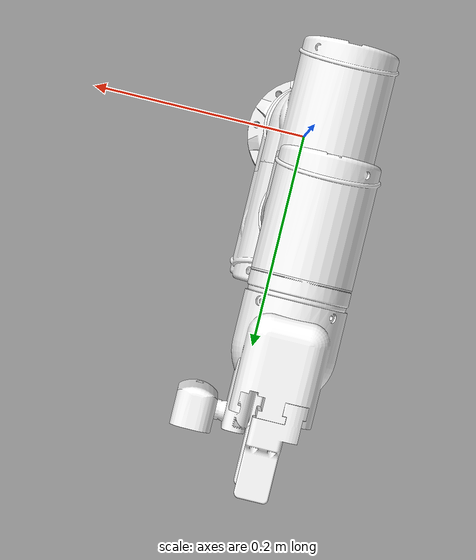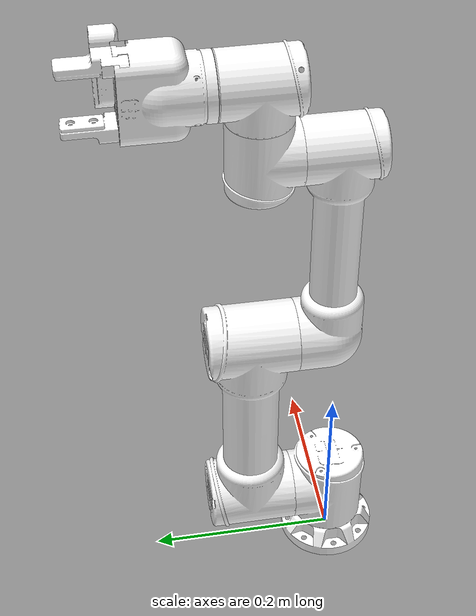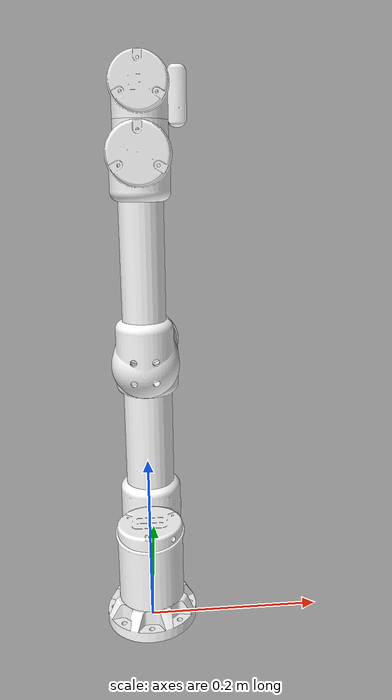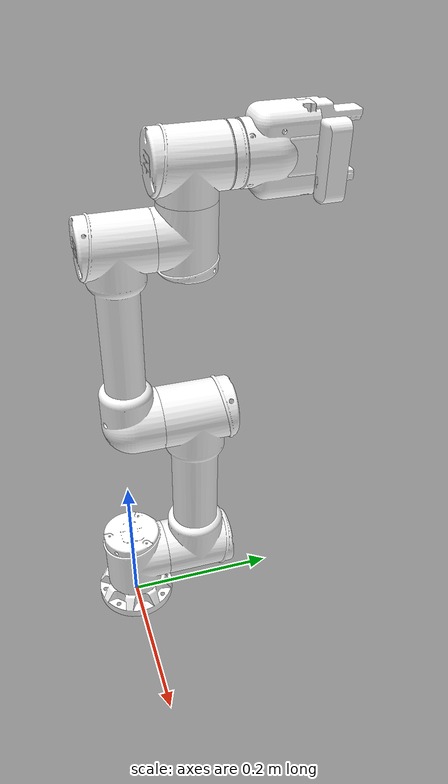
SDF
<?xml version="1.0"?>
<sdf version="1.7">
    <model name="EB100">
        <!-- Fix To World -->
        <joint name="ground_plane" type="fixed">
            <parent>world</parent>
            <child>base_link</child>
        </joint>
        <!-- Arm Links -->
        <link name="base_link">
            <visual name="base_link_visual">
                <geometry>
                    <mesh>
                        <uri>base_link/base_link.STL</uri>
                    </mesh>
                </geometry>
                <material>
                    <diffuse>1.0 1.0 1.0</diffuse>
                    <specular>1.0 1.0 1.0</specular>
                </material>
            </visual>
            <collision name="base_link_collision">
                <geometry>
                    <mesh>
                        <uri>base_link/base_link.STL</uri>
                    </mesh>
                </geometry>
                <surface>
                    <friction>
                        <ode>
                            <mu>1.05</mu>
                            <mu2>1.05</mu2>
                        </ode>
                    </friction>
                </surface>
            </collision>
            <inertial>
                <pose>-1.33024218671373E-07 5.42254364069815E-07 0.0149456241765188 0 0 0</pose>
                <mass>2.814271300104062</mass>
                <inertia>
                    <ixx>0.0075390636364814695</ixx>
                    <iyy>0.010508017427382959</iyy>
                    <izz>0.009864933638708275</izz>
                    <ixy>-1.5053124574783335e-05</ixy>
                    <ixz>-0.0012144328835738973</ixz>
                    <iyz>1.0434803501032979e-05</iyz>
                </inertia>
            </inertial>
        </link>
        <link name="link1">
            <pose relative_to="joint1">0 0 0 0 0 0</pose>
            <visual name="link1_visual">
                <geometry>
                    <mesh>
                        <uri>link_1/link1.STL</uri>
                    </mesh>
                </geometry>
                <material>
                    <diffuse>1.0 1.0 1.0</diffuse>
                    <specular>1.0 1.0 1.0</specular>
                </material>
            </visual>
            <collision name="link1_collision">
                <geometry>
                    <mesh>
                        <uri>link_1/link1.STL</uri>
                    </mesh>
                </geometry>
                <surface>
                    <friction>
                        <ode>
                            <mu>1.05</mu>
                            <mu2>1.05</mu2>
                        </ode>
                    </friction>
                </surface>
            </collision>
            <inertial>
                <pose>-3.49038868342818E-05 -0.00648920194363665 0.00701216463523289 0 0 0</pose>
                <mass>2.6433170427227215</mass>
                <inertia>
                    <ixx>0.017405076982879724</ixx>
                    <iyy>0.015352077935781732</iyy>
                    <izz>0.005987891663073857</izz>
                    <ixy>-8.687986369621078e-09</ixy>
                    <ixz>-1.6277819062920423e-08</ixz>
                    <iyz>0.004510855959102245</iyz>
                </inertia>
            </inertial>
        </link>
        <link name="link2">
            <pose relative_to="joint2">0 0 0 0 0 0</pose>
            <visual name="link2_visual">
                <geometry>
                    <mesh>
                        <uri>link_2/link2.STL</uri>
                    </mesh>
                </geometry>
                <material>
                    <diffuse>1.0 1.0 1.0</diffuse>
                    <specular>1.0 1.0 1.0</specular>
                </material>
            </visual>
            <collision name="link2_collision">
                <geometry>
                    <mesh>
                        <uri>link_2/link2.STL</uri>
                    </mesh>
                </geometry>
                <surface>
                    <friction>
                        <ode>
                            <mu>1.05</mu>
                            <mu2>1.05</mu2>
                        </ode>
                    </friction>
                </surface>
            </collision>
            <inertial>
                <pose>5.25111081205538E-05 0.11715485741318 -0.00391005557091638 0 0 0</pose>
                <mass>2.6652755331661186</mass>
                <inertia>
                    <ixx>0.01778694005635383</ixx>
                    <iyy>0.006044133867952844</iyy>
                    <izz>0.01571095500455695</izz>
                    <ixy>8.70635625879119e-08</ixy>
                    <ixz>3.752072058394008e-08</ixz>
                    <iyz>-0.004599490295490376</iyz>
                </inertia>
            </inertial>
        </link>
        <link name="link3">
            <pose relative_to="joint3">0 0 0 0 0 0</pose>
            <visual name="link3_visual">
                <geometry>
                    <mesh>
                        <uri>link_3/link3.STL</uri>
                    </mesh>
                </geometry>
                <material>
                    <diffuse>1.0 1.0 1.0</diffuse>
                    <specular>1.0 1.0 1.0</specular>
                </material>
            </visual>
            <collision name="link3_collision">
                <geometry>
                    <mesh>
                        <uri>link_3/link3.STL</uri>
                    </mesh>
                </geometry>
                <surface>
                    <friction>
                        <ode>
                            <mu>1.05</mu>
                            <mu2>1.05</mu2>
                        </ode>
                    </friction>
                </surface>
            </collision>
            <inertial>
                <pose>-3.34027587025817E-06 0.108727898112191 0.000786655462555005 0 0 0</pose>
                <mass>2.3293714829045733</mass>
                <inertia>
                    <ixx>0.0075496764161139766</ixx>
                    <iyy>0.009680676080191398</iyy>
                    <izz>0.007944557422008086</izz>
                    <ixy>-0.0024320464513492225</ixy>
                    <ixz>-0.003250815048103007</ixz>
                    <iyz>-0.0021316282421730694</iyz>
                </inertia>
            </inertial>
        </link>
        <link name="link4">
            <pose relative_to="joint4">0 0 0 0 0 0</pose>
            <visual name="link4_visual">
                <geometry>
                    <mesh>
                        <uri>link_4/link4.STL</uri>
                    </mesh>
                </geometry>
                <material>
                    <diffuse>1.0 1.0 1.0</diffuse>
                    <specular>1.0 1.0 1.0</specular>
                </material>
            </visual>
            <collision name="link4_collision">
                <geometry>
                    <mesh>
                        <uri>link_4/link4.STL</uri>
                    </mesh>
                </geometry>
                <surface>
                    <friction>
                        <ode>
                            <mu>1.05</mu>
                            <mu2>1.05</mu2>
                        </ode>
                    </friction>
                </surface>
            </collision>
            <inertial>
                <pose>-1.44468152066875E-05 0.00662054639180243 0.0677858766519277 0 0 0</pose>
                <mass>2.3104763646281508</mass>
                <inertia>
                    <ixx>0.007764568814864828</ixx>
                    <iyy>0.008015776929980149</iyy>
                    <izz>0.009955882308071066</izz>
                    <ixy>0.003371475204045935</ixy>
                    <ixz>-0.002343621113168248</ixz>
                    <iyz>0.0022917526161470624</iyz>
                </inertia>
            </inertial>
        </link>
        <link name="link5">
            <pose relative_to="joint5">0 0 0 0 0 0</pose>
            <visual name="link5_visual">
                <geometry>
                    <mesh>
                        <uri>link_5/link5.STL</uri>
                    </mesh>
                </geometry>
                <material>
                    <diffuse>1.0 1.0 1.0</diffuse>
                    <specular>1.0 1.0 1.0</specular>
                </material>
            </visual>
            <collision name="link5_collision">
                <geometry>
                    <mesh>
                        <uri>link_5/link5.STL</uri>
                    </mesh>
                </geometry>
                <surface>
                    <friction>
                        <ode>
                            <mu>1.05</mu>
                            <mu2>1.05</mu2>
                        </ode>
                    </friction>
                </surface>
            </collision>
            <inertial>
                <pose>1.588131219553E-05 0.0677856742896595 0.00662015510693871 0 0 0</pose>
                <mass>2.6226426154892004</mass>
                <inertia>
                    <ixx>0.029070538014399377</ixx>
                    <iyy>0.027638529986528795</iyy>
                    <izz>0.004251111234400737</izz>
                    <ixy>6.208738268725568e-07</ixy>
                    <ixz>-1.0059151925023392e-05</ixz>
                    <iyz>-0.007424306477850814</iyz>
                </inertia>
            </inertial>
        </link>
        <link name="link6">
            <pose relative_to="joint6">0 0 0 0 0 0</pose>
            <visual name="link6_visual">
                <geometry>
                    <mesh>
                        <uri>link_6/link6.STL</uri>
                    </mesh>
                </geometry>
                <material>
                    <diffuse>1.0 1.0 1.0</diffuse>
                    <specular>1.0 1.0 1.0</specular>
                </material>
            </visual>
            <collision name="link6_collision">
                <geometry>
                    <mesh>
                        <uri>link_6/link6.STL</uri>
                    </mesh>
                </geometry>
                <surface>
                    <friction>
                        <ode>
                            <mu>1.05</mu>
                            <mu2>1.05</mu2>
                        </ode>
                    </friction>
                </surface>
            </collision>
            <inertial>
                <pose>-4.85506410887449E-05 -0.000772066948343975 0.0864369192980011 0 0 0</pose>
                <mass>1.5025804886626795</mass>
                <inertia>
                    <ixx>0.002940555801469018</ixx>
                    <iyy>0.00392105201248677</iyy>
                    <izz>0.0054115603870960195</izz>
                    <ixy>-0.00042391108351381507</ixy>
                    <ixz>0.000610007735338717</ixz>
                    <iyz>0.00012647545430836214</iyz>
                </inertia>
            </inertial>
        </link>

        <!-- Gripper Finger Links -->
        <link name="gripper_left_link">
            <pose relative_to="gripper_left_joint">0 0 0 0 0 0</pose>
            <visual name="gripper_left_visual">
                <geometry>
                    <mesh>
                        <uri>gripper_left_link/gripper_left_link.STL</uri>
                    </mesh>
                </geometry>
                <material>
                    <diffuse>1.0 1.0 1.0</diffuse>
                    <specular>1.0 1.0 1.0</specular>
                </material>
            </visual>
            <collision name="gripper_left_collision">
                <geometry>
                    <mesh>
                        <uri>gripper_left_link/gripper_left_link.STL</uri>
                    </mesh>
                </geometry>
                <surface>
                    <friction>
                        <ode>
                            <mu>2.15</mu>
                            <mu2>2.15</mu2>
                        </ode>
                    </friction>
                </surface>
            </collision>
            <inertial>
                <pose>-0.230028099250672 0.048706949092005 0.296932678246992 0 0 0</pose>
                <mass>0.02238453537819424</mass>
                <inertia>
                    <ixx>6.74804167363695e-05</ixx>
                    <iyy>6.627189221641395e-05</iyy>
                    <izz>1.550396267804825e-05</izz>
                    <ixy>-4.1027443646025676e-09</ixy>
                    <ixz>1.8693673970152995e-08</ixz>
                    <iyz>1.1967548474390802e-05</iyz>
                </inertia>
            </inertial>
        </link>
        <link name="gripper_right_link">
            <pose relative_to="gripper_right_joint">0 0 0 0 0 0</pose>
            <visual name="gripper_right_visual">
                <geometry>
                    <mesh>
                        <uri>gripper_right_link/gripper_right_link.STL</uri>
                    </mesh>
                </geometry>
                <material>
                    <diffuse>1.0 1.0 1.0</diffuse>
                    <specular>1.0 1.0 1.0</specular>
                </material>
            </visual>
            <collision name="gripper_right_collision">
                <geometry>
                    <mesh>
                        <uri>gripper_right_link/gripper_right_link.STL</uri>
                    </mesh>
                </geometry>
                <surface>
                    <friction>
                        <ode>
                            <mu>2.15</mu>
                            <mu2>2.15</mu2>
                        </ode>
                    </friction>
                </surface>
            </collision>
            <inertial>
                <pose>0.279241572361513 0.0486859261203842 -0.281739991890775 0 0 0</pose>
                <mass>0.02238453537819424</mass>
                <inertia>
                    <ixx>6.74804167363695e-05</ixx>
                    <iyy>6.627189221641395e-05</iyy>
                    <izz>1.550396267804825e-05</izz>
                    <ixy>-4.1027443646025676e-09</ixy>
                    <ixz>1.8693673970152995e-08</ixz>
                    <iyz>1.1967548474390802e-05</iyz>
                </inertia>
            </inertial>
        </link>
        <link name="camera_link">
            <pose relative_to="camera_joint">0 0 0 0 -1.5708 0</pose>
            <visual name="camera_link_visual">
                <geometry>
                    <mesh>
                        <uri>camera_link/camera.stl</uri>
                        <scale>0.001 0.001 0.001</scale>
                    </mesh>
                </geometry>
                <material>
                    <diffuse>1.0 1.0 1.0</diffuse>
                    <specular>1.0 1.0 1.0</specular>
                </material>
            </visual>
            <collision name="camera_link_collision">
                <geometry>
                    <mesh>
                        <uri>camera_link/camera.stl</uri>
                        <scale>0.001 0.001 0.001</scale>
                    </mesh>
                </geometry>
                <surface>
                    <friction>
                        <ode>
                            <mu>1.05</mu>
                            <mu2>1.05</mu2>
                        </ode>
                    </friction>
                </surface>
            </collision>
            <inertial>
                <pose>-0.011644453579349 -0.000127541365236405 -0.0168801747695049 0 0 0</pose>
                <mass>0.000078</mass>
                <inertia>
                    <ixx>1.4393E-05</ixx>
                    <ixy>1.0273E-08</ixy>
                    <ixz>-7.719E-10</ixz>
                    <iyy>4.4785E-06</iyy>
                    <iyz>4.6621E-09</iyz>
                    <izz>1.2723E-05</izz>
                </inertia>
            </inertial>
            <sensor name="camera" type="camera">
                <camera>
                    <horizontal_fov>1.919</horizontal_fov>
                    <image>
                        <width>640</width>
                        <height>480</height>
                        <format>R8G8B8</format>
                    </image>
                    <clip>
                        <near>0.1</near>
                        <far>100</far>
                    </clip>
                </camera>
                <always_on>1</always_on>
                <update_rate>30</update_rate>
                <visualize>true</visualize>
                <topic>camera/image</topic> <!-- Updated topic name for clarity -->
            </sensor>
            <plugin filename="ignition-gazebo-camera-system" name="ignition::gazebo::systems::Camera">
                <camera>
                    <image>
                        <width>640</width>
                        <height>480</height>
                        <format>R8G8B8</format>
                    </image>
                    <update_rate>30</update_rate>
                </camera>
            </plugin>
        </link>

        <!-- Arm Joints -->
        <joint name="joint1" type="revolute">
            <pose relative_to="base_link">0.00017721 -0.00015518 0.076035 -1.5708 0 0</pose>
            <parent>base_link</parent>
            <child>link1</child>
            <axis>
                <xyz>0 -1 0</xyz>
                <limit>
                    <effort>87</effort>
                    <lower>-3.1415926535897932384626433832795</lower>
                    <upper>3.1415926535897932384626433832795</upper>
                    <velocity>2.617993877991494</velocity>
                </limit>
                <dynamics>
                    <spring_reference>0</spring_reference>
                    <spring_stiffness>0</spring_stiffness>
                    <damping>21.75</damping>
                    <friction>3.48</friction>
                </dynamics>
            </axis>
        </joint>
        <joint name="joint2" type="revolute">
            <pose relative_to="link1">0 0 0.0911 3.1416 0 0</pose>
            <parent>link1</parent>
            <child>link2</child>
            <axis>
                <xyz>0 0 -1</xyz>
                <limit>
                    <effort>87</effort>
                    <lower>-3.1415926535897932384626433832795</lower>
                    <upper>3.1415926535897932384626433832795</upper>
                    <velocity>2.617993877991494</velocity>
                </limit>
                <dynamics>
                    <spring_reference>0</spring_reference>
                    <spring_stiffness>0</spring_stiffness>
                    <damping>21.75</damping>
                    <friction>3.48</friction>
                </dynamics>
            </axis>
        </joint>
        <joint name="joint3" type="revolute">
            <pose relative_to="link2">0.0002 0.23547 0.083104 0 0 0</pose>
            <parent>link2</parent>
            <child>link3</child>
            <axis>
                <xyz>0 0 -1</xyz>
                <limit>
                    <effort>87</effort>
                    <lower>-3.1415926535897932384626433832795</lower>
                    <upper>3.1415926535897932384626433832795</upper>
                    <velocity>2.617993877991494</velocity>
                </limit>
                <dynamics>
                    <spring_reference>0</spring_reference>
                    <spring_stiffness>0</spring_stiffness>
                    <damping>21.75</damping>
                    <friction>3.48</friction>
                </dynamics>
            </axis>
        </joint>
        <joint name="joint4" type="revolute">
            <pose relative_to="link3">0 0.2290554354712 0 -3.1416 0 0</pose>
            <parent>link3</parent>
            <child>link4</child>
            <axis>
                <xyz>0 0 -1</xyz>
                <limit>
                    <effort>87</effort>
                    <lower>-3.1415926535897932384626433832795</lower>
                    <upper>3.1415926535897932384626433832795</upper>
                    <velocity>2.617993877991494</velocity>
                </limit>
                <dynamics>
                    <spring_reference>0</spring_reference>
                    <spring_stiffness>0</spring_stiffness>
                    <damping>21.75</damping>
                    <friction>3.48</friction>
                </dynamics>
            </axis>
        </joint>
        <joint name="joint5" type="revolute">
            <pose relative_to="link4">0 0 0.0769999999999998 3.1416 0 0</pose>
            <parent>link4</parent>
            <child>link5</child>
            <axis>
                <xyz>0 -1 0</xyz>
                <limit>
                    <effort>12</effort>
                    <lower>-3.1415926535897932384626433832795</lower>
                    <upper>3.1415926535897932384626433832795</upper>
                    <velocity>3.1415926535897932384626433832795</velocity>
                </limit>
                <dynamics>
                    <spring_reference>0</spring_reference>
                    <spring_stiffness>0</spring_stiffness>
                    <damping>3.0</damping>
                    <friction>0.48</friction>
                </dynamics>
            </axis>
        </joint>
        <joint name="joint6" type="revolute">
            <pose relative_to="link5">0 0.077 0 -3.1416 0 0</pose>
            <parent>link5</parent>
            <child>link6</child>
            <axis>
                <xyz>0 0 -1</xyz>
                <limit>
                    <effort>12</effort>
                    <lower>-3.1415926535897932384626433832795</lower>
                    <upper>3.1415926535897932384626433832795</upper>
                    <velocity>3.1415926535897932384626433832795</velocity>
                </limit>
                <dynamics>
                    <spring_reference>0</spring_reference>
                    <spring_stiffness>0</spring_stiffness>
                    <damping>3.0</damping>
                    <friction>0.48</friction>
                </dynamics>
            </axis>
        </joint>

        <!-- Finger Joints -->
        <joint name="gripper_left_joint" type="prismatic">
            <pose relative_to="link6">-0.291197990250782 0.255084835806096 0.0865221108762051 1.57079632679489 0 1.57079632679489</pose>
            <parent>link6</parent>
            <child>gripper_left_link</child>
            <axis>
                <xyz>1 0 0</xyz>
                <limit>
                    <effort>20</effort>
                    <lower>-0.04</lower>
                    <upper>0</upper>
                    <velocity>0.2</velocity>
                </limit>
                <dynamics>
                    <spring_reference>0</spring_reference>
                    <spring_stiffness>0</spring_stiffness>
                    <damping>10</damping>
                    <friction>0.5</friction>
                </dynamics>
            </axis>
        </joint>
        <joint name="gripper_right_joint" type="prismatic">
            <pose relative_to="link6">-0.287864518042259 0.254184835806095 0.086722110876205 1.5707963267949 0 -1.5707963267949</pose>
            <parent>link6</parent>
            <child>gripper_right_link</child>
            <axis>
                <xyz>-1 0 0</xyz>
                <limit>
                    <effort>20</effort>
                    <lower>0.0</lower>
                    <upper>0.04</upper>
                    <velocity>0.2</velocity>
                </limit>
                <dynamics>
                    <spring_reference>0</spring_reference>
                    <spring_stiffness>0</spring_stiffness>
                    <damping>10</damping>
                    <friction>0.5</friction>
                </dynamics>
            </axis>
        </joint>
        <joint name="camera_joint" type="fixed">
            <pose relative_to="link6">0.0600999999999985 -0.000500000224238906 0.127499999999999 0 0 0</pose>
            <parent>link6</parent>
            <child>camera_link</child>
        </joint>

        <!-- Joint controller plugins -->
        <plugin filename="ignition-gazebo-joint-position-controller-system" name="ignition::gazebo::systems::JointPositionController">
            <joint_name>joint1</joint_name>
            <p_gain>50</p_gain>
            <d_gain>20</d_gain>
            <i_gain>0</i_gain>
            <i_min>-1</i_min>
            <i_max>1</i_max>
            <cmd_min>-87</cmd_min>
            <cmd_max>87</cmd_max>
            <topic>/joint_angles/joint1</topic>
        </plugin>
        <plugin filename="ignition-gazebo-joint-position-controller-system" name="ignition::gazebo::systems::JointPositionController">
            <joint_name>joint2</joint_name>
            <p_gain>10000</p_gain>
            <i_gain>0</i_gain>
            <d_gain>500</d_gain>
            <i_max>1</i_max>
            <i_min>-1</i_min>
            <cmd_max>87</cmd_max>
            <cmd_min>-87</cmd_min>
            <topic>/joint_angles/joint2</topic>
        </plugin>
        <plugin filename="ignition-gazebo-joint-position-controller-system" name="ignition::gazebo::systems::JointPositionController">
            <joint_name>joint3</joint_name>
            <p_gain>100</p_gain>
            <i_gain>0</i_gain>
            <d_gain>10</d_gain>
            <i_max>1</i_max>
            <i_min>-1</i_min>
            <cmd_max>87</cmd_max>
            <cmd_min>-87</cmd_min>
            <topic>/joint_angles/joint3</topic>
        </plugin>
        <plugin filename="ignition-gazebo-joint-position-controller-system" name="ignition::gazebo::systems::JointPositionController">
            <joint_name>joint4</joint_name>
            <p_gain>1000</p_gain>
            <i_gain>0</i_gain>
            <d_gain>50</d_gain>
            <i_max>1</i_max>
            <i_min>-1</i_min>
            <cmd_max>87</cmd_max>
            <cmd_min>-87</cmd_min>
            <topic>/joint_angles/joint4</topic>
        </plugin>
        <plugin filename="ignition-gazebo-joint-position-controller-system" name="ignition::gazebo::systems::JointPositionController">
            <joint_name>joint5</joint_name>
            <p_gain>100</p_gain>
            <i_gain>0</i_gain>
            <d_gain>50</d_gain>
            <i_max>1</i_max>
            <i_min>-1</i_min>
            <cmd_max>12</cmd_max>
            <cmd_min>-12</cmd_min>
            <topic>/joint_angles/joint5</topic>
        </plugin>
        <plugin filename="ignition-gazebo-joint-position-controller-system" name="ignition::gazebo::systems::JointPositionController">
            <joint_name>joint6</joint_name>
            <p_gain>100</p_gain>
            <i_gain>0</i_gain>
            <d_gain>10</d_gain>
            <i_max>1</i_max>
            <i_min>-1</i_min>
            <cmd_max>12</cmd_max>
            <cmd_min>-12</cmd_min>
            <topic>/joint_angles/joint6</topic>
        </plugin>
        <plugin filename="ignition-gazebo-joint-position-controller-system" name="ignition::gazebo::systems::JointPositionController">
            <joint_name>gripper_left_joint</joint_name>
            <p_gain>100</p_gain>
            <d_gain>50</d_gain>
            <i_gain>0</i_gain>
            <i_min>-1</i_min>
            <i_max>1</i_max>
            <cmd_min>-20</cmd_min>
            <cmd_max>20</cmd_max>
            <topic>/joint_angles/gripper_left_joint</topic>
        </plugin>
        <plugin filename="ignition-gazebo-joint-position-controller-system" name="ignition::gazebo::systems::JointPositionController">
            <joint_name>gripper_right_joint</joint_name>
            <p_gain>100</p_gain>
            <d_gain>50</d_gain>
            <i_gain>0</i_gain>
            <i_min>-1</i_min>
            <i_max>1</i_max>
            <cmd_min>-20</cmd_min>
            <cmd_max>20</cmd_max>
            <topic>/joint_angles/gripper_right_joint</topic>
        </plugin>
    </model>
</sdf>
